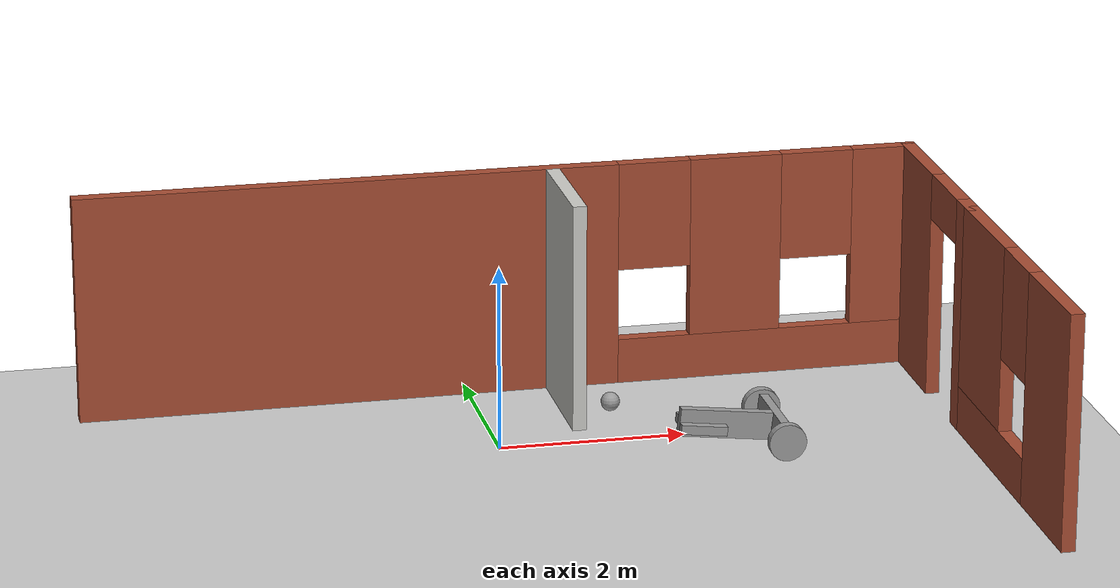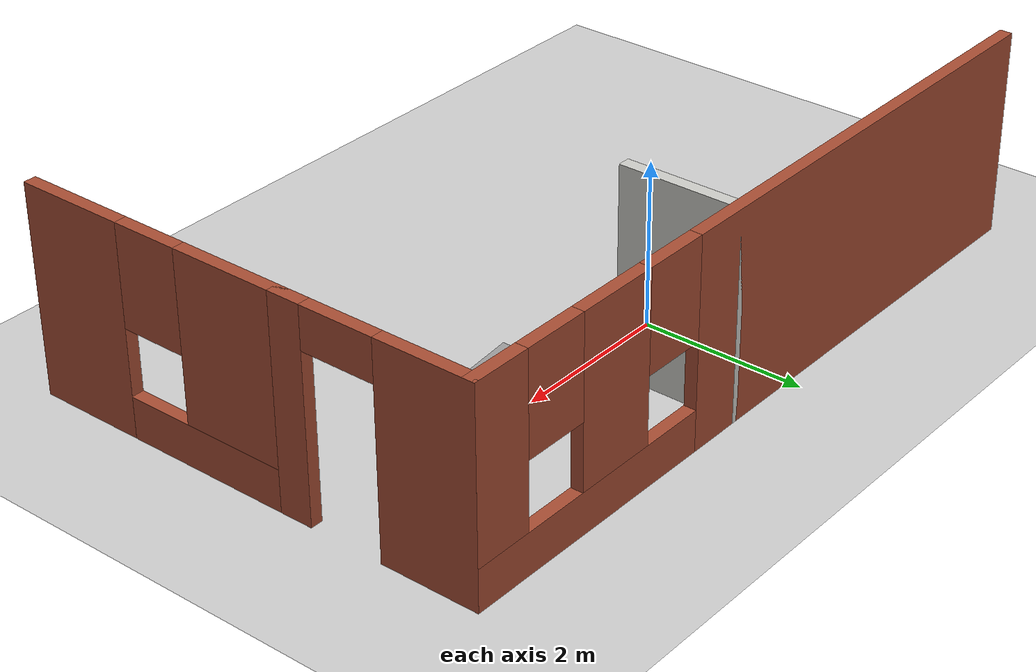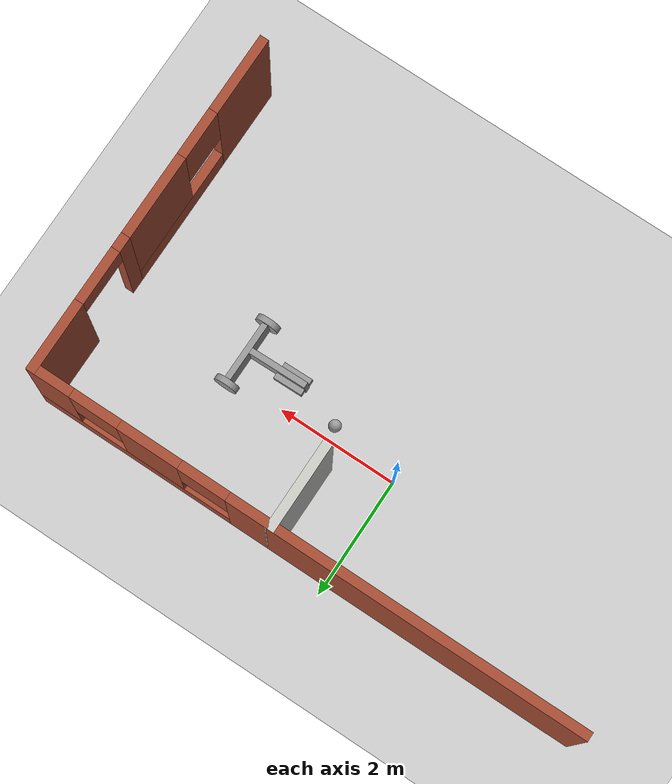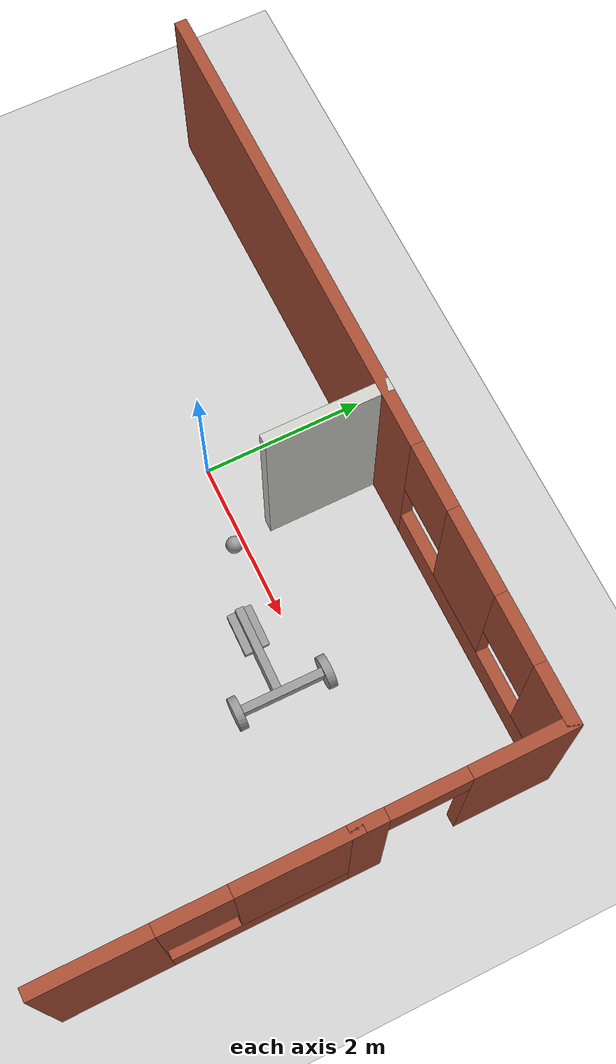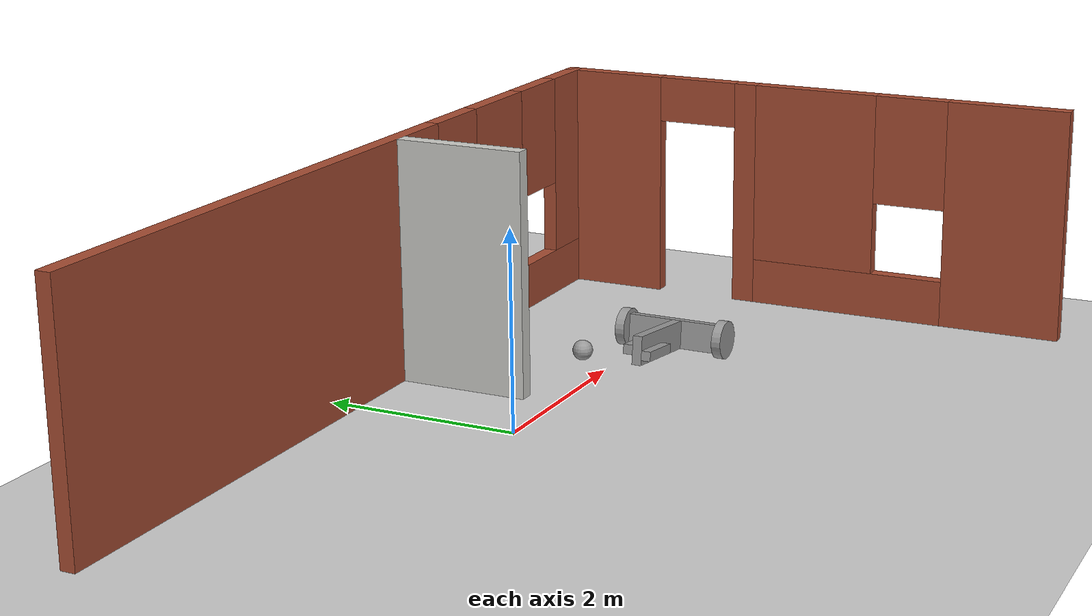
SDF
<sdf version="1.6">
 <world name="default">
  <model name="ground_plane">
   <static>1</static>
   <link name="link">
    <collision name="collision">
     <geometry><plane><normal>0 0 1</normal><size>100 100</size></plane></geometry>
     <surface>
      <contact><collide_bitmask>65535</collide_bitmask></contact>
      <friction><ode><mu>100</mu><mu2>50</mu2></ode></friction>
     </surface>
    </collision>
    <visual name="visual">
     <cast_shadows>0</cast_shadows>
     <geometry><plane><normal>0 0 1</normal><size>100 100</size></plane></geometry>
     <material>
      <script><uri>file://media/materials/scripts/gazebo.material</uri><name>Gazebo/Grey</name></script>
     </material>
    </visual>
   </link>
  </model>
  <model name="robot_with_arms">
   <link name="link_0">
    <inertial>
     <mass>1</mass>
     <inertia>
      <ixx>0.166667</ixx>
      <ixy>0</ixy>
      <ixz>0</ixz>
      <iyy>0.166667</iyy>
      <iyz>0</iyz>
      <izz>0.166667</izz>
     </inertia>
    </inertial>
    <visual name="visual">
     <geometry><box><size>0.3 1 0.1</size></box></geometry>
     <material>
      <lighting>1</lighting>
      <script><uri>file://media/materials/scripts/gazebo.material</uri><name>Gazebo/Grey</name></script>
      <shader type="pixel"><normal_map>__default__</normal_map></shader>
      <ambient>0.3 0.3 0.3 1</ambient>
      <diffuse>0.7 0.7 0.7 1</diffuse>
      <specular>0.01 0.01 0.01 1</specular>
      <emissive>0 0 0 1</emissive>
     </material>
    </visual>
    <visual name="ModelPreview_0::link_0::visual_1">
     <geometry><box><size>0.3 1 0.1</size></box></geometry>
     <material>
      <lighting>1</lighting>
      <script><uri>file://media/materials/scripts/gazebo.material</uri><name>Gazebo/Grey</name></script>
      <shader type="pixel"><normal_map>__default__</normal_map></shader>
      <ambient>0.3 0.3 0.3 1</ambient>
      <diffuse>0.7 0.7 0.7 1</diffuse>
      <specular>0.01 0.01 0.01 1</specular>
      <emissive>0 0 0 1</emissive>
     </material>
    </visual>
    <collision name="collision">
     <geometry><box><size>0.3 1 0.1</size></box></geometry>
     <surface>
      <friction>
       <ode><mu>1</mu><mu2>1</mu2><fdir1>0 0 0</fdir1><slip1>0</slip1><slip2>0</slip2></ode>
       <torsional>
        <coefficient>1</coefficient>
        <patch_radius>0</patch_radius>
        <surface_radius>0</surface_radius>
        <use_patch_radius>1</use_patch_radius>
        <ode><slip>0</slip></ode>
       </torsional>
      </friction>
      <bounce><restitution_coefficient>0</restitution_coefficient><threshold>1e+06</threshold></bounce>
      <contact>
       <collide_without_contact>0</collide_without_contact>
       <collide_without_contact_bitmask>1</collide_without_contact_bitmask>
       <collide_bitmask>1</collide_bitmask>
       <ode>
        <soft_cfm>0</soft_cfm>
        <soft_erp>0.2</soft_erp>
        <kp>1e+13</kp>
        <kd>1</kd>
        <max_vel>0.01</max_vel>
        <min_depth>0</min_depth>
       </ode>
       <bullet>
        <split_impulse>1</split_impulse>
        <split_impulse_penetration_threshold>-0.01</split_impulse_penetration_threshold>
        <soft_cfm>0</soft_cfm>
        <soft_erp>0.2</soft_erp>
        <kp>1e+13</kp>
        <kd>1</kd>
       </bullet>
      </contact>
     </surface>
    </collision>
   </link>
   <link name="link_0_0">
    <pose>-0 -0.045 0.55 0 -0 0</pose>
    <inertial>
     <mass>1</mass>
     <inertia>
      <ixx>0.166667</ixx>
      <ixy>0</ixy>
      <ixz>0</ixz>
      <iyy>0.166667</iyy>
      <iyz>0</iyz>
      <izz>0.166667</izz>
     </inertia>
    </inertial>
    <visual name="visual">
     <geometry><box><size>0.3 0.1 1</size></box></geometry>
     <material>
      <lighting>1</lighting>
      <script><uri>file://media/materials/scripts/gazebo.material</uri><name>Gazebo/Grey</name></script>
      <shader type="pixel"><normal_map>__default__</normal_map></shader>
      <ambient>0.3 0.3 0.3 1</ambient>
      <diffuse>0.7 0.7 0.7 1</diffuse>
      <specular>0.01 0.01 0.01 1</specular>
      <emissive>0 0 0 1</emissive>
     </material>
    </visual>
    <collision name="collision">
     <geometry><box><size>0.3 0.1 1</size></box></geometry>
     <surface>
      <friction>
       <ode><mu>1</mu><mu2>1</mu2><fdir1>0 0 0</fdir1><slip1>0</slip1><slip2>0</slip2></ode>
       <torsional>
        <coefficient>1</coefficient>
        <patch_radius>0</patch_radius>
        <surface_radius>0</surface_radius>
        <use_patch_radius>1</use_patch_radius>
        <ode><slip>0</slip></ode>
       </torsional>
      </friction>
      <bounce><restitution_coefficient>0</restitution_coefficient><threshold>1e+06</threshold></bounce>
      <contact>
       <collide_without_contact>0</collide_without_contact>
       <collide_without_contact_bitmask>1</collide_without_contact_bitmask>
       <collide_bitmask>1</collide_bitmask>
       <ode>
        <soft_cfm>0</soft_cfm>
        <soft_erp>0.2</soft_erp>
        <kp>1e+13</kp>
        <kd>1</kd>
        <max_vel>0.01</max_vel>
        <min_depth>0</min_depth>
       </ode>
       <bullet>
        <split_impulse>1</split_impulse>
        <split_impulse_penetration_threshold>-0.01</split_impulse_penetration_threshold>
        <soft_cfm>0</soft_cfm>
        <soft_erp>0.2</soft_erp>
        <kp>1e+13</kp>
        <kd>1</kd>
       </bullet>
      </contact>
     </surface>
    </collision>
   </link>
   <link name="link_1">
    <pose>0 -0.550019 -0 1.5707 -0 0</pose>
    <inertial>
     <mass>1</mass>
     <inertia><ixx>0.145833</ixx><ixy>0</ixy><ixz>0</ixz><iyy>0.145833</iyy><iyz>0</iyz><izz>0.125</izz></inertia>
    </inertial>
    <visual name="visual">
     <geometry><cylinder><radius>0.2</radius><length>0.1</length></cylinder></geometry>
     <material>
      <lighting>1</lighting>
      <script><uri>file://media/materials/scripts/gazebo.material</uri><name>Gazebo/Grey</name></script>
      <shader type="pixel"><normal_map>__default__</normal_map></shader>
      <ambient>0.3 0.3 0.3 1</ambient>
      <diffuse>0.7 0.7 0.7 1</diffuse>
      <specular>0.01 0.01 0.01 1</specular>
      <emissive>0 0 0 1</emissive>
     </material>
    </visual>
    <collision name="collision">
     <geometry><cylinder><radius>0.2</radius><length>0.1</length></cylinder></geometry>
     <surface>
      <friction>
       <ode><mu>1</mu><mu2>1</mu2><fdir1>0 0 0</fdir1><slip1>0</slip1><slip2>0</slip2></ode>
       <torsional>
        <coefficient>1</coefficient>
        <patch_radius>0</patch_radius>
        <surface_radius>0</surface_radius>
        <use_patch_radius>1</use_patch_radius>
        <ode><slip>0</slip></ode>
       </torsional>
      </friction>
      <bounce><restitution_coefficient>0</restitution_coefficient><threshold>1e+06</threshold></bounce>
      <contact>
       <collide_without_contact>0</collide_without_contact>
       <collide_without_contact_bitmask>1</collide_without_contact_bitmask>
       <collide_bitmask>1</collide_bitmask>
       <ode>
        <soft_cfm>0</soft_cfm>
        <soft_erp>0.2</soft_erp>
        <kp>1e+13</kp>
        <kd>1</kd>
        <max_vel>0.01</max_vel>
        <min_depth>0</min_depth>
       </ode>
       <bullet>
        <split_impulse>1</split_impulse>
        <split_impulse_penetration_threshold>-0.01</split_impulse_penetration_threshold>
        <soft_cfm>0</soft_cfm>
        <soft_erp>0.2</soft_erp>
        <kp>1e+13</kp>
        <kd>1</kd>
       </bullet>
      </contact>
     </surface>
    </collision>
   </link>
   <link name="link_1_0">
    <pose>-0.045 -0.145 0.8 0 -0 0</pose>
    <inertial>
     <mass>1</mass>
     <inertia>
      <ixx>0.166667</ixx>
      <ixy>0</ixy>
      <ixz>0</ixz>
      <iyy>0.166667</iyy>
      <iyz>0</iyz>
      <izz>0.166667</izz>
     </inertia>
    </inertial>
    <visual name="visual">
     <geometry><box><size>0.1 0.1 0.5</size></box></geometry>
     <material>
      <lighting>1</lighting>
      <script><uri>file://media/materials/scripts/gazebo.material</uri><name>Gazebo/Grey</name></script>
      <shader type="pixel"><normal_map>__default__</normal_map></shader>
      <ambient>0.3 0.3 0.3 1</ambient>
      <diffuse>0.7 0.7 0.7 1</diffuse>
      <specular>0.01 0.01 0.01 1</specular>
      <emissive>0 0 0 1</emissive>
     </material>
    </visual>
    <collision name="collision">
     <geometry><box><size>0.1 0.1 0.5</size></box></geometry>
     <surface>
      <friction>
       <ode><mu>1</mu><mu2>1</mu2><fdir1>0 0 0</fdir1><slip1>0</slip1><slip2>0</slip2></ode>
       <torsional>
        <coefficient>1</coefficient>
        <patch_radius>0</patch_radius>
        <surface_radius>0</surface_radius>
        <use_patch_radius>1</use_patch_radius>
        <ode><slip>0</slip></ode>
       </torsional>
      </friction>
      <bounce><restitution_coefficient>0</restitution_coefficient><threshold>1e+06</threshold></bounce>
      <contact>
       <collide_without_contact>0</collide_without_contact>
       <collide_without_contact_bitmask>1</collide_without_contact_bitmask>
       <collide_bitmask>1</collide_bitmask>
       <ode>
        <soft_cfm>0</soft_cfm>
        <soft_erp>0.2</soft_erp>
        <kp>1e+13</kp>
        <kd>1</kd>
        <max_vel>0.01</max_vel>
        <min_depth>0</min_depth>
       </ode>
       <bullet>
        <split_impulse>1</split_impulse>
        <split_impulse_penetration_threshold>-0.01</split_impulse_penetration_threshold>
        <soft_cfm>0</soft_cfm>
        <soft_erp>0.2</soft_erp>
        <kp>1e+13</kp>
        <kd>1</kd>
       </bullet>
      </contact>
     </surface>
    </collision>
   </link>
   <link name="link_1_0_clone">
    <pose>-0 0.055 0.8 0 -0 0</pose>
    <inertial>
     <mass>1</mass>
     <inertia>
      <ixx>0.166667</ixx>
      <ixy>0</ixy>
      <ixz>0</ixz>
      <iyy>0.166667</iyy>
      <iyz>0</iyz>
      <izz>0.166667</izz>
     </inertia>
    </inertial>
    <visual name="visual_0">
     <geometry><box><size>0.1 0.1 0.5</size></box></geometry>
     <material>
      <lighting>1</lighting>
      <script><uri>file://media/materials/scripts/gazebo.material</uri><name>Gazebo/Grey</name></script>
      <shader type="pixel"><normal_map>__default__</normal_map></shader>
      <ambient>0.3 0.3 0.3 1</ambient>
      <diffuse>0.7 0.7 0.7 1</diffuse>
      <specular>0.01 0.01 0.01 1</specular>
      <emissive>0 0 0 1</emissive>
     </material>
    </visual>
    <collision name="collision">
     <geometry><box><size>0.1 0.1 0.5</size></box></geometry>
     <surface>
      <friction>
       <ode><mu>1</mu><mu2>1</mu2><fdir1>0 0 0</fdir1><slip1>0</slip1><slip2>0</slip2></ode>
       <torsional>
        <coefficient>1</coefficient>
        <patch_radius>0</patch_radius>
        <surface_radius>0</surface_radius>
        <use_patch_radius>1</use_patch_radius>
        <ode><slip>0</slip></ode>
       </torsional>
      </friction>
      <bounce><restitution_coefficient>0</restitution_coefficient><threshold>1e+06</threshold></bounce>
      <contact>
       <collide_without_contact>0</collide_without_contact>
       <collide_without_contact_bitmask>1</collide_without_contact_bitmask>
       <collide_bitmask>1</collide_bitmask>
       <ode>
        <soft_cfm>0</soft_cfm>
        <soft_erp>0.2</soft_erp>
        <kp>1e+13</kp>
        <kd>1</kd>
        <max_vel>0.01</max_vel>
        <min_depth>0</min_depth>
       </ode>
       <bullet>
        <split_impulse>1</split_impulse>
        <split_impulse_penetration_threshold>-0.01</split_impulse_penetration_threshold>
        <soft_cfm>0</soft_cfm>
        <soft_erp>0.2</soft_erp>
        <kp>1e+13</kp>
        <kd>1</kd>
       </bullet>
      </contact>
     </surface>
    </collision>
   </link>
   <link name="link_1_clone">
    <pose>-0 0.550019 0 1.5707 -0 0</pose>
    <inertial>
     <mass>1</mass>
     <inertia><ixx>0.145833</ixx><ixy>0</ixy><ixz>0</ixz><iyy>0.145833</iyy><iyz>0</iyz><izz>0.125</izz></inertia>
    </inertial>
    <visual name="visual">
     <geometry><cylinder><radius>0.2</radius><length>0.1</length></cylinder></geometry>
     <material>
      <lighting>1</lighting>
      <script><uri>file://media/materials/scripts/gazebo.material</uri><name>Gazebo/Grey</name></script>
      <shader type="pixel"><normal_map>__default__</normal_map></shader>
      <ambient>0.3 0.3 0.3 1</ambient>
      <diffuse>0.7 0.7 0.7 1</diffuse>
      <specular>0.01 0.01 0.01 1</specular>
      <emissive>0 0 0 1</emissive>
     </material>
    </visual>
    <collision name="collision">
     <geometry><cylinder><radius>0.2</radius><length>0.1</length></cylinder></geometry>
     <surface>
      <friction>
       <ode><mu>1</mu><mu2>1</mu2><fdir1>0 0 0</fdir1><slip1>0</slip1><slip2>0</slip2></ode>
       <torsional>
        <coefficient>1</coefficient>
        <patch_radius>0</patch_radius>
        <surface_radius>0</surface_radius>
        <use_patch_radius>1</use_patch_radius>
        <ode><slip>0</slip></ode>
       </torsional>
      </friction>
      <bounce><restitution_coefficient>0</restitution_coefficient><threshold>1e+06</threshold></bounce>
      <contact>
       <collide_without_contact>0</collide_without_contact>
       <collide_without_contact_bitmask>1</collide_without_contact_bitmask>
       <collide_bitmask>1</collide_bitmask>
       <ode>
        <soft_cfm>0</soft_cfm>
        <soft_erp>0.2</soft_erp>
        <kp>1e+13</kp>
        <kd>1</kd>
        <max_vel>0.01</max_vel>
        <min_depth>0</min_depth>
       </ode>
       <bullet>
        <split_impulse>1</split_impulse>
        <split_impulse_penetration_threshold>-0.01</split_impulse_penetration_threshold>
        <soft_cfm>0</soft_cfm>
        <soft_erp>0.2</soft_erp>
        <kp>1e+13</kp>
        <kd>1</kd>
       </bullet>
      </contact>
     </surface>
    </collision>
   </link>
   <joint name="link_0_0_JOINT_1" type="revolute">
    <parent>link_0_0</parent>
    <child>link_1_0</child>
    <axis>
     <xyz>0 1 0</xyz>
     <use_parent_model_frame>0</use_parent_model_frame>
     <limit>
      <lower>-1.79769e+308</lower>
      <upper>1.79769e+308</upper>
      <effort>-1</effort>
      <velocity>-1</velocity>
     </limit>
     <dynamics>
      <spring_reference>0</spring_reference>
      <spring_stiffness>0</spring_stiffness>
      <damping>0</damping>
      <friction>0</friction>
     </dynamics>
    </axis>
    <physics>
     <ode><limit><cfm>0</cfm><erp>0.2</erp></limit><suspension><cfm>0</cfm><erp>0.2</erp></suspension></ode>
    </physics>
   </joint>
   <joint name="link_0_0_JOINT_2" type="revolute">
    <parent>link_0_0</parent>
    <child>link_1_0_clone</child>
    <axis>
     <xyz>0 1 0</xyz>
     <use_parent_model_frame>0</use_parent_model_frame>
     <limit>
      <lower>-1.79769e+308</lower>
      <upper>1.79769e+308</upper>
      <effort>-1</effort>
      <velocity>-1</velocity>
     </limit>
     <dynamics>
      <spring_reference>0</spring_reference>
      <spring_stiffness>0</spring_stiffness>
      <damping>0</damping>
      <friction>0</friction>
     </dynamics>
    </axis>
    <physics>
     <ode><limit><cfm>0</cfm><erp>0.2</erp></limit><suspension><cfm>0</cfm><erp>0.2</erp></suspension></ode>
    </physics>
   </joint>
   <joint name="link_0_JOINT_0_0" type="fixed">
    <parent>link_0</parent>
    <child>link_0_0</child>
    <physics>
     <ode><limit><cfm>0</cfm><erp>0.2</erp></limit><suspension><cfm>0</cfm><erp>0.2</erp></suspension></ode>
    </physics>
   </joint>
   <joint name="link_0_JOINT_0" type="revolute">
    <parent>link_0</parent>
    <child>link_1</child>
    <axis>
     <xyz>0 0 1</xyz>
     <use_parent_model_frame>0</use_parent_model_frame>
     <limit>
      <lower>-1.79769e+308</lower>
      <upper>1.79769e+308</upper>
      <effort>-1</effort>
      <velocity>-1</velocity>
     </limit>
     <dynamics>
      <spring_reference>0</spring_reference>
      <spring_stiffness>0</spring_stiffness>
      <damping>0</damping>
      <friction>0</friction>
     </dynamics>
    </axis>
    <physics>
     <ode><limit><cfm>0</cfm><erp>0.2</erp></limit><suspension><cfm>0</cfm><erp>0.2</erp></suspension></ode>
    </physics>
   </joint>
   <joint name="link_0_JOINT_1" type="revolute">
    <parent>link_0</parent>
    <child>link_1_clone</child>
    <axis>
     <xyz>0 0 1</xyz>
     <use_parent_model_frame>0</use_parent_model_frame>
     <limit>
      <lower>-1.79769e+308</lower>
      <upper>1.79769e+308</upper>
      <effort>-1</effort>
      <velocity>-1</velocity>
     </limit>
     <dynamics>
      <spring_reference>0</spring_reference>
      <spring_stiffness>0</spring_stiffness>
      <damping>0</damping>
      <friction>0</friction>
     </dynamics>
    </axis>
    <physics>
     <ode><limit><cfm>0</cfm><erp>0.2</erp></limit><suspension><cfm>0</cfm><erp>0.2</erp></suspension></ode>
    </physics>
   </joint>
   <static>0</static>
   <pose>2.8767 -0.401517 0.199998 3.5e-05 -1.45216 -0.004097</pose>
  </model>
  <model name="Building">
   <link name="Wall_10">
    <pose>0.55 2.175 0 0 -0 1.5708</pose>
    <visual name="Wall_10_Visual">
     <pose>0 0 1.25 0 -0 0</pose>
     <geometry><box><size>1.5 0.15 2.5</size></box></geometry>
     <material>
      <script><uri>file://media/materials/scripts/gazebo.material</uri><name>Gazebo/CeilingTiled</name></script>
      <ambient>0.435294 0.796078 0.67451 1</ambient>
      <shader type="pixel"/>
      <diffuse>1 1 1 1</diffuse>
      <specular>0 0 0 1</specular>
      <emissive>0 0 0 1</emissive>
     </material>
     <meta><layer>0</layer></meta>
    </visual>
    <collision name="Wall_10_Collision">
     <pose>0 0 1.25 0 -0 0</pose>
     <geometry><box><size>1.5 0.15 2.5</size></box></geometry>
     <surface>
      <friction>
       <ode><mu>1</mu><mu2>1</mu2><fdir1>0 0 0</fdir1><slip1>0</slip1><slip2>0</slip2></ode>
       <torsional>
        <coefficient>1</coefficient>
        <patch_radius>0</patch_radius>
        <surface_radius>0</surface_radius>
        <use_patch_radius>1</use_patch_radius>
        <ode><slip>0</slip></ode>
       </torsional>
      </friction>
      <bounce><restitution_coefficient>0</restitution_coefficient><threshold>1e+06</threshold></bounce>
      <contact>
       <collide_without_contact>0</collide_without_contact>
       <collide_without_contact_bitmask>1</collide_without_contact_bitmask>
       <collide_bitmask>1</collide_bitmask>
       <ode>
        <soft_cfm>0</soft_cfm>
        <soft_erp>0.2</soft_erp>
        <kp>1e+13</kp>
        <kd>1</kd>
        <max_vel>0.01</max_vel>
        <min_depth>0</min_depth>
       </ode>
       <bullet>
        <split_impulse>1</split_impulse>
        <split_impulse_penetration_threshold>-0.01</split_impulse_penetration_threshold>
        <soft_cfm>0</soft_cfm>
        <soft_erp>0.2</soft_erp>
        <kp>1e+13</kp>
        <kd>1</kd>
       </bullet>
      </contact>
     </surface>
    </collision>
   </link>
   <link name="Wall_2">
    <pose>4.55 -1.175 0 0 -0 1.5708</pose>
    <inertial>
     <mass>1</mass>
     <inertia><ixx>1</ixx><ixy>0</ixy><ixz>0</ixz><iyy>1</iyy><iyz>0</iyz><izz>1</izz></inertia>
    </inertial>
    <visual name="Wall_2_Visual_0">
     <pose>-1.09465 0 1.25 0 -0 0</pose>
     <geometry><box><size>1.31069 0.15 2.5</size></box></geometry>
     <material>
      <script><uri>file://media/materials/scripts/gazebo.material</uri><name>Gazebo/Bricks</name></script>
      <ambient>1 1 1 1</ambient>
      <shader type="pixel"><normal_map>__default__</normal_map></shader>
      <diffuse>1 1 1 1</diffuse>
      <specular>0.2 0.2 0.2 1</specular>
      <emissive>0 0 0 1</emissive>
     </material>
     <meta><layer>0</layer></meta>
    </visual>
    <visual name="Wall_2_Visual_1">
     <pose>0.655345 0 0.25 0 -0 0</pose>
     <geometry><box><size>2.18931 0.15 0.5</size></box></geometry>
     <material>
      <script><uri>file://media/materials/scripts/gazebo.material</uri><name>Gazebo/Bricks</name></script>
      <ambient>1 1 1 1</ambient>
      <shader type="pixel"><normal_map>__default__</normal_map></shader>
      <diffuse>1 1 1 1</diffuse>
      <specular>0.2 0.2 0.2 1</specular>
      <emissive>0 0 0 1</emissive>
     </material>
     <meta><layer>0</layer></meta>
    </visual>
    <visual name="Wall_2_Visual_2">
     <pose>1.05534 0 1.5 0 -0 0</pose>
     <geometry><box><size>1.38931 0.15 2</size></box></geometry>
     <material>
      <script><uri>file://media/materials/scripts/gazebo.material</uri><name>Gazebo/Bricks</name></script>
      <ambient>1 1 1 1</ambient>
      <shader type="pixel"><normal_map>__default__</normal_map></shader>
      <diffuse>1 1 1 1</diffuse>
      <specular>0.2 0.2 0.2 1</specular>
      <emissive>0 0 0 1</emissive>
     </material>
     <meta><layer>0</layer></meta>
    </visual>
    <visual name="Wall_2_Visual_3">
     <pose>-0.03931 0 1.9 0 -0 0</pose>
     <geometry><box><size>0.8 0.15 1.2</size></box></geometry>
     <material>
      <script><uri>file://media/materials/scripts/gazebo.material</uri><name>Gazebo/Bricks</name></script>
      <ambient>1 1 1 1</ambient>
      <shader type="pixel"><normal_map>__default__</normal_map></shader>
      <diffuse>1 1 1 1</diffuse>
      <specular>0.2 0.2 0.2 1</specular>
      <emissive>0 0 0 1</emissive>
     </material>
     <meta><layer>0</layer></meta>
    </visual>
    <collision name="Wall_2_Collision_0">
     <pose>-1.09465 0 1.25 0 -0 0</pose>
     <geometry><box><size>1.31069 0.15 2.5</size></box></geometry>
     <surface>
      <friction>
       <ode><mu>1</mu><mu2>1</mu2><fdir1>0 0 0</fdir1><slip1>0</slip1><slip2>0</slip2></ode>
       <torsional>
        <coefficient>1</coefficient>
        <patch_radius>0</patch_radius>
        <surface_radius>0</surface_radius>
        <use_patch_radius>1</use_patch_radius>
        <ode><slip>0</slip></ode>
       </torsional>
      </friction>
      <bounce><restitution_coefficient>0</restitution_coefficient><threshold>1e+06</threshold></bounce>
      <contact>
       <collide_without_contact>0</collide_without_contact>
       <collide_without_contact_bitmask>1</collide_without_contact_bitmask>
       <collide_bitmask>1</collide_bitmask>
       <ode>
        <soft_cfm>0</soft_cfm>
        <soft_erp>0.2</soft_erp>
        <kp>1e+13</kp>
        <kd>1</kd>
        <max_vel>0.01</max_vel>
        <min_depth>0</min_depth>
       </ode>
       <bullet>
        <split_impulse>1</split_impulse>
        <split_impulse_penetration_threshold>-0.01</split_impulse_penetration_threshold>
        <soft_cfm>0</soft_cfm>
        <soft_erp>0.2</soft_erp>
        <kp>1e+13</kp>
        <kd>1</kd>
       </bullet>
      </contact>
     </surface>
    </collision>
    <collision name="Wall_2_Collision_3">
     <pose>-0.03931 0 1.9 0 -0 0</pose>
     <geometry><box><size>0.8 0.15 1.2</size></box></geometry>
     <surface>
      <friction>
       <ode><mu>1</mu><mu2>1</mu2><fdir1>0 0 0</fdir1><slip1>0</slip1><slip2>0</slip2></ode>
       <torsional>
        <coefficient>1</coefficient>
        <patch_radius>0</patch_radius>
        <surface_radius>0</surface_radius>
        <use_patch_radius>1</use_patch_radius>
        <ode><slip>0</slip></ode>
       </torsional>
      </friction>
      <bounce><restitution_coefficient>0</restitution_coefficient><threshold>1e+06</threshold></bounce>
      <contact>
       <collide_without_contact>0</collide_without_contact>
       <collide_without_contact_bitmask>1</collide_without_contact_bitmask>
       <collide_bitmask>1</collide_bitmask>
       <ode>
        <soft_cfm>0</soft_cfm>
        <soft_erp>0.2</soft_erp>
        <kp>1e+13</kp>
        <kd>1</kd>
        <max_vel>0.01</max_vel>
        <min_depth>0</min_depth>
       </ode>
       <bullet>
        <split_impulse>1</split_impulse>
        <split_impulse_penetration_threshold>-0.01</split_impulse_penetration_threshold>
        <soft_cfm>0</soft_cfm>
        <soft_erp>0.2</soft_erp>
        <kp>1e+13</kp>
        <kd>1</kd>
       </bullet>
      </contact>
     </surface>
    </collision>
    <collision name="Wall_2_Collision_1">
     <pose>0.655345 0 0.25 0 -0 0</pose>
     <geometry><box><size>2.18931 0.15 0.5</size></box></geometry>
     <surface>
      <friction>
       <ode><mu>1</mu><mu2>1</mu2><fdir1>0 0 0</fdir1><slip1>0</slip1><slip2>0</slip2></ode>
       <torsional>
        <coefficient>1</coefficient>
        <patch_radius>0</patch_radius>
        <surface_radius>0</surface_radius>
        <use_patch_radius>1</use_patch_radius>
        <ode><slip>0</slip></ode>
       </torsional>
      </friction>
      <bounce><restitution_coefficient>0</restitution_coefficient><threshold>1e+06</threshold></bounce>
      <contact>
       <collide_without_contact>0</collide_without_contact>
       <collide_without_contact_bitmask>1</collide_without_contact_bitmask>
       <collide_bitmask>1</collide_bitmask>
       <ode>
        <soft_cfm>0</soft_cfm>
        <soft_erp>0.2</soft_erp>
        <kp>1e+13</kp>
        <kd>1</kd>
        <max_vel>0.01</max_vel>
        <min_depth>0</min_depth>
       </ode>
       <bullet>
        <split_impulse>1</split_impulse>
        <split_impulse_penetration_threshold>-0.01</split_impulse_penetration_threshold>
        <soft_cfm>0</soft_cfm>
        <soft_erp>0.2</soft_erp>
        <kp>1e+13</kp>
        <kd>1</kd>
       </bullet>
      </contact>
     </surface>
    </collision>
    <collision name="Wall_2_Collision_2">
     <pose>1.05534 0 1.5 0 -0 0</pose>
     <geometry><box><size>1.38931 0.15 2</size></box></geometry>
     <surface>
      <friction>
       <ode><mu>1</mu><mu2>1</mu2><fdir1>0 0 0</fdir1><slip1>0</slip1><slip2>0</slip2></ode>
       <torsional>
        <coefficient>1</coefficient>
        <patch_radius>0</patch_radius>
        <surface_radius>0</surface_radius>
        <use_patch_radius>1</use_patch_radius>
        <ode><slip>0</slip></ode>
       </torsional>
      </friction>
      <bounce><restitution_coefficient>0</restitution_coefficient><threshold>1e+06</threshold></bounce>
      <contact>
       <collide_without_contact>0</collide_without_contact>
       <collide_without_contact_bitmask>1</collide_without_contact_bitmask>
       <collide_bitmask>1</collide_bitmask>
       <ode>
        <soft_cfm>0</soft_cfm>
        <soft_erp>0.2</soft_erp>
        <kp>1e+13</kp>
        <kd>1</kd>
        <max_vel>0.01</max_vel>
        <min_depth>0</min_depth>
       </ode>
       <bullet>
        <split_impulse>1</split_impulse>
        <split_impulse_penetration_threshold>-0.01</split_impulse_penetration_threshold>
        <soft_cfm>0</soft_cfm>
        <soft_erp>0.2</soft_erp>
        <kp>1e+13</kp>
        <kd>1</kd>
       </bullet>
      </contact>
     </surface>
    </collision>
   </link>
   <link name="Wall_5">
    <pose>0 2.85 0 0 -0 0</pose>
    <visual name="Wall_5_Visual_0">
     <pose>-1.6726 0 1.25 0 -0 0</pose>
     <geometry><box><size>5.90481 0.15 2.5</size></box></geometry>
     <material>
      <script><uri>file://media/materials/scripts/gazebo.material</uri><name>Gazebo/Bricks</name></script>
      <ambient>1 1 1 1</ambient>
      <shader type="pixel"/>
      <diffuse>1 1 1 1</diffuse>
      <specular>0.2 0.2 0.2 1</specular>
      <emissive>0 0 0 1</emissive>
     </material>
     <meta><layer>0</layer></meta>
    </visual>
    <visual name="Wall_5_Visual_1">
     <pose>2.9524 0 0.25 0 -0 0</pose>
     <geometry><box><size>3.34519 0.15 0.5</size></box></geometry>
     <material>
      <script><uri>file://media/materials/scripts/gazebo.material</uri><name>Gazebo/Bricks</name></script>
      <ambient>1 1 1 1</ambient>
      <shader type="pixel"/>
      <diffuse>1 1 1 1</diffuse>
      <specular>0.2 0.2 0.2 1</specular>
      <emissive>0 0 0 1</emissive>
     </material>
     <meta><layer>0</layer></meta>
    </visual>
    <visual name="Wall_5_Visual_2">
     <pose>2.58765 0 1.5 0 -0 0</pose>
     <geometry><box><size>1.01569 0.15 2</size></box></geometry>
     <material>
      <script><uri>file://media/materials/scripts/gazebo.material</uri><name>Gazebo/Bricks</name></script>
      <ambient>1 1 1 1</ambient>
      <shader type="pixel"/>
      <diffuse>1 1 1 1</diffuse>
      <specular>0.2 0.2 0.2 1</specular>
      <emissive>0 0 0 1</emissive>
     </material>
     <meta><layer>0</layer></meta>
    </visual>
    <visual name="Wall_5_Visual_3">
     <pose>4.26025 0 1.5 0 -0 0</pose>
     <geometry><box><size>0.729503 0.15 2</size></box></geometry>
     <material>
      <script><uri>file://media/materials/scripts/gazebo.material</uri><name>Gazebo/Bricks</name></script>
      <ambient>1 1 1 1</ambient>
      <shader type="pixel"/>
      <diffuse>1 1 1 1</diffuse>
      <specular>0.2 0.2 0.2 1</specular>
      <emissive>0 0 0 1</emissive>
     </material>
     <meta><layer>0</layer></meta>
    </visual>
    <visual name="Wall_5_Visual_4">
     <pose>1.67981 0 1.9 0 -0 0</pose>
     <geometry><box><size>0.8 0.15 1.2</size></box></geometry>
     <material>
      <script><uri>file://media/materials/scripts/gazebo.material</uri><name>Gazebo/Bricks</name></script>
      <ambient>1 1 1 1</ambient>
      <shader type="pixel"/>
      <diffuse>1 1 1 1</diffuse>
      <specular>0.2 0.2 0.2 1</specular>
      <emissive>0 0 0 1</emissive>
     </material>
     <meta><layer>0</layer></meta>
    </visual>
    <visual name="Wall_5_Visual_5">
     <pose>3.4955 0 1.9 0 -0 0</pose>
     <geometry><box><size>0.8 0.15 1.2</size></box></geometry>
     <material>
      <script><uri>file://media/materials/scripts/gazebo.material</uri><name>Gazebo/Bricks</name></script>
      <ambient>1 1 1 1</ambient>
      <shader type="pixel"/>
      <diffuse>1 1 1 1</diffuse>
      <specular>0.2 0.2 0.2 1</specular>
      <emissive>0 0 0 1</emissive>
     </material>
     <meta><layer>0</layer></meta>
    </visual>
    <collision name="Wall_5_Collision_0">
     <pose>-1.6726 0 1.25 0 -0 0</pose>
     <geometry><box><size>5.90481 0.15 2.5</size></box></geometry>
     <surface>
      <friction>
       <ode><mu>1</mu><mu2>1</mu2><fdir1>0 0 0</fdir1><slip1>0</slip1><slip2>0</slip2></ode>
       <torsional>
        <coefficient>1</coefficient>
        <patch_radius>0</patch_radius>
        <surface_radius>0</surface_radius>
        <use_patch_radius>1</use_patch_radius>
        <ode><slip>0</slip></ode>
       </torsional>
      </friction>
      <bounce><restitution_coefficient>0</restitution_coefficient><threshold>1e+06</threshold></bounce>
      <contact>
       <collide_without_contact>0</collide_without_contact>
       <collide_without_contact_bitmask>1</collide_without_contact_bitmask>
       <collide_bitmask>1</collide_bitmask>
       <ode>
        <soft_cfm>0</soft_cfm>
        <soft_erp>0.2</soft_erp>
        <kp>1e+13</kp>
        <kd>1</kd>
        <max_vel>0.01</max_vel>
        <min_depth>0</min_depth>
       </ode>
       <bullet>
        <split_impulse>1</split_impulse>
        <split_impulse_penetration_threshold>-0.01</split_impulse_penetration_threshold>
        <soft_cfm>0</soft_cfm>
        <soft_erp>0.2</soft_erp>
        <kp>1e+13</kp>
        <kd>1</kd>
       </bullet>
      </contact>
     </surface>
    </collision>
    <collision name="Wall_5_Collision_3">
     <pose>4.26025 0 1.5 0 -0 0</pose>
     <geometry><box><size>0.729503 0.15 2</size></box></geometry>
     <surface>
      <friction>
       <ode><mu>1</mu><mu2>1</mu2><fdir1>0 0 0</fdir1><slip1>0</slip1><slip2>0</slip2></ode>
       <torsional>
        <coefficient>1</coefficient>
        <patch_radius>0</patch_radius>
        <surface_radius>0</surface_radius>
        <use_patch_radius>1</use_patch_radius>
        <ode><slip>0</slip></ode>
       </torsional>
      </friction>
      <bounce><restitution_coefficient>0</restitution_coefficient><threshold>1e+06</threshold></bounce>
      <contact>
       <collide_without_contact>0</collide_without_contact>
       <collide_without_contact_bitmask>1</collide_without_contact_bitmask>
       <collide_bitmask>1</collide_bitmask>
       <ode>
        <soft_cfm>0</soft_cfm>
        <soft_erp>0.2</soft_erp>
        <kp>1e+13</kp>
        <kd>1</kd>
        <max_vel>0.01</max_vel>
        <min_depth>0</min_depth>
       </ode>
       <bullet>
        <split_impulse>1</split_impulse>
        <split_impulse_penetration_threshold>-0.01</split_impulse_penetration_threshold>
        <soft_cfm>0</soft_cfm>
        <soft_erp>0.2</soft_erp>
        <kp>1e+13</kp>
        <kd>1</kd>
       </bullet>
      </contact>
     </surface>
    </collision>
    <collision name="Wall_5_Collision_1">
     <pose>2.9524 0 0.25 0 -0 0</pose>
     <geometry><box><size>3.34519 0.15 0.5</size></box></geometry>
     <surface>
      <friction>
       <ode><mu>1</mu><mu2>1</mu2><fdir1>0 0 0</fdir1><slip1>0</slip1><slip2>0</slip2></ode>
       <torsional>
        <coefficient>1</coefficient>
        <patch_radius>0</patch_radius>
        <surface_radius>0</surface_radius>
        <use_patch_radius>1</use_patch_radius>
        <ode><slip>0</slip></ode>
       </torsional>
      </friction>
      <bounce><restitution_coefficient>0</restitution_coefficient><threshold>1e+06</threshold></bounce>
      <contact>
       <collide_without_contact>0</collide_without_contact>
       <collide_without_contact_bitmask>1</collide_without_contact_bitmask>
       <collide_bitmask>1</collide_bitmask>
       <ode>
        <soft_cfm>0</soft_cfm>
        <soft_erp>0.2</soft_erp>
        <kp>1e+13</kp>
        <kd>1</kd>
        <max_vel>0.01</max_vel>
        <min_depth>0</min_depth>
       </ode>
       <bullet>
        <split_impulse>1</split_impulse>
        <split_impulse_penetration_threshold>-0.01</split_impulse_penetration_threshold>
        <soft_cfm>0</soft_cfm>
        <soft_erp>0.2</soft_erp>
        <kp>1e+13</kp>
        <kd>1</kd>
       </bullet>
      </contact>
     </surface>
    </collision>
    <collision name="Wall_5_Collision_2">
     <pose>2.58765 0 1.5 0 -0 0</pose>
     <geometry><box><size>1.01569 0.15 2</size></box></geometry>
     <surface>
      <friction>
       <ode><mu>1</mu><mu2>1</mu2><fdir1>0 0 0</fdir1><slip1>0</slip1><slip2>0</slip2></ode>
       <torsional>
        <coefficient>1</coefficient>
        <patch_radius>0</patch_radius>
        <surface_radius>0</surface_radius>
        <use_patch_radius>1</use_patch_radius>
        <ode><slip>0</slip></ode>
       </torsional>
      </friction>
      <bounce><restitution_coefficient>0</restitution_coefficient><threshold>1e+06</threshold></bounce>
      <contact>
       <collide_without_contact>0</collide_without_contact>
       <collide_without_contact_bitmask>1</collide_without_contact_bitmask>
       <collide_bitmask>1</collide_bitmask>
       <ode>
        <soft_cfm>0</soft_cfm>
        <soft_erp>0.2</soft_erp>
        <kp>1e+13</kp>
        <kd>1</kd>
        <max_vel>0.01</max_vel>
        <min_depth>0</min_depth>
       </ode>
       <bullet>
        <split_impulse>1</split_impulse>
        <split_impulse_penetration_threshold>-0.01</split_impulse_penetration_threshold>
        <soft_cfm>0</soft_cfm>
        <soft_erp>0.2</soft_erp>
        <kp>1e+13</kp>
        <kd>1</kd>
       </bullet>
      </contact>
     </surface>
    </collision>
    <collision name="Wall_5_Collision_5">
     <pose>3.4955 0 1.9 0 -0 0</pose>
     <geometry><box><size>0.8 0.15 1.2</size></box></geometry>
     <surface>
      <friction>
       <ode><mu>1</mu><mu2>1</mu2><fdir1>0 0 0</fdir1><slip1>0</slip1><slip2>0</slip2></ode>
       <torsional>
        <coefficient>1</coefficient>
        <patch_radius>0</patch_radius>
        <surface_radius>0</surface_radius>
        <use_patch_radius>1</use_patch_radius>
        <ode><slip>0</slip></ode>
       </torsional>
      </friction>
      <bounce><restitution_coefficient>0</restitution_coefficient><threshold>1e+06</threshold></bounce>
      <contact>
       <collide_without_contact>0</collide_without_contact>
       <collide_without_contact_bitmask>1</collide_without_contact_bitmask>
       <collide_bitmask>1</collide_bitmask>
       <ode>
        <soft_cfm>0</soft_cfm>
        <soft_erp>0.2</soft_erp>
        <kp>1e+13</kp>
        <kd>1</kd>
        <max_vel>0.01</max_vel>
        <min_depth>0</min_depth>
       </ode>
       <bullet>
        <split_impulse>1</split_impulse>
        <split_impulse_penetration_threshold>-0.01</split_impulse_penetration_threshold>
        <soft_cfm>0</soft_cfm>
        <soft_erp>0.2</soft_erp>
        <kp>1e+13</kp>
        <kd>1</kd>
       </bullet>
      </contact>
     </surface>
    </collision>
    <collision name="Wall_5_Collision_4">
     <pose>1.67981 0 1.9 0 -0 0</pose>
     <geometry><box><size>0.8 0.15 1.2</size></box></geometry>
     <surface>
      <friction>
       <ode><mu>1</mu><mu2>1</mu2><fdir1>0 0 0</fdir1><slip1>0</slip1><slip2>0</slip2></ode>
       <torsional>
        <coefficient>1</coefficient>
        <patch_radius>0</patch_radius>
        <surface_radius>0</surface_radius>
        <use_patch_radius>1</use_patch_radius>
        <ode><slip>0</slip></ode>
       </torsional>
      </friction>
      <bounce><restitution_coefficient>0</restitution_coefficient><threshold>1e+06</threshold></bounce>
      <contact>
       <collide_without_contact>0</collide_without_contact>
       <collide_without_contact_bitmask>1</collide_without_contact_bitmask>
       <collide_bitmask>1</collide_bitmask>
       <ode>
        <soft_cfm>0</soft_cfm>
        <soft_erp>0.2</soft_erp>
        <kp>1e+13</kp>
        <kd>1</kd>
        <max_vel>0.01</max_vel>
        <min_depth>0</min_depth>
       </ode>
       <bullet>
        <split_impulse>1</split_impulse>
        <split_impulse_penetration_threshold>-0.01</split_impulse_penetration_threshold>
        <soft_cfm>0</soft_cfm>
        <soft_erp>0.2</soft_erp>
        <kp>1e+13</kp>
        <kd>1</kd>
       </bullet>
      </contact>
     </surface>
    </collision>
   </link>
   <link name="Wall_6">
    <pose>4.55 1.675 0 0 0 -1.5708</pose>
    <visual name="Wall_6_Visual_0">
     <pose>-0.650369 0 1.25 0 -0 0</pose>
     <geometry><box><size>1.19926 0.15 2.5</size></box></geometry>
     <material>
      <script><uri>file://media/materials/scripts/gazebo.material</uri><name>Gazebo/Bricks</name></script>
      <ambient>1 1 1 1</ambient>
      <shader type="pixel"/>
      <diffuse>1 1 1 1</diffuse>
      <specular>0.2 0.2 0.2 1</specular>
      <emissive>0 0 0 1</emissive>
     </material>
     <meta><layer>0</layer></meta>
    </visual>
    <visual name="Wall_6_Visual_1">
     <pose>1.04963 0 1.25 0 -0 0</pose>
     <geometry><box><size>0.400738 0.15 2.5</size></box></geometry>
     <material>
      <script><uri>file://media/materials/scripts/gazebo.material</uri><name>Gazebo/Bricks</name></script>
      <ambient>1 1 1 1</ambient>
      <shader type="pixel"/>
      <diffuse>1 1 1 1</diffuse>
      <specular>0.2 0.2 0.2 1</specular>
      <emissive>0 0 0 1</emissive>
     </material>
     <meta><layer>0</layer></meta>
    </visual>
    <visual name="Wall_6_Visual_2">
     <pose>0.399262 0 2.25 0 -0 0</pose>
     <geometry><box><size>0.9 0.15 0.5</size></box></geometry>
     <material>
      <script><uri>file://media/materials/scripts/gazebo.material</uri><name>Gazebo/Bricks</name></script>
      <ambient>1 1 1 1</ambient>
      <shader type="pixel"/>
      <diffuse>1 1 1 1</diffuse>
      <specular>0.2 0.2 0.2 1</specular>
      <emissive>0 0 0 1</emissive>
     </material>
     <meta><layer>0</layer></meta>
    </visual>
    <collision name="Wall_6_Collision_0">
     <pose>-0.650369 0 1.25 0 -0 0</pose>
     <geometry><box><size>1.19926 0.15 2.5</size></box></geometry>
     <surface>
      <friction>
       <ode><mu>1</mu><mu2>1</mu2><fdir1>0 0 0</fdir1><slip1>0</slip1><slip2>0</slip2></ode>
       <torsional>
        <coefficient>1</coefficient>
        <patch_radius>0</patch_radius>
        <surface_radius>0</surface_radius>
        <use_patch_radius>1</use_patch_radius>
        <ode><slip>0</slip></ode>
       </torsional>
      </friction>
      <bounce><restitution_coefficient>0</restitution_coefficient><threshold>1e+06</threshold></bounce>
      <contact>
       <collide_without_contact>0</collide_without_contact>
       <collide_without_contact_bitmask>1</collide_without_contact_bitmask>
       <collide_bitmask>1</collide_bitmask>
       <ode>
        <soft_cfm>0</soft_cfm>
        <soft_erp>0.2</soft_erp>
        <kp>1e+13</kp>
        <kd>1</kd>
        <max_vel>0.01</max_vel>
        <min_depth>0</min_depth>
       </ode>
       <bullet>
        <split_impulse>1</split_impulse>
        <split_impulse_penetration_threshold>-0.01</split_impulse_penetration_threshold>
        <soft_cfm>0</soft_cfm>
        <soft_erp>0.2</soft_erp>
        <kp>1e+13</kp>
        <kd>1</kd>
       </bullet>
      </contact>
     </surface>
    </collision>
    <collision name="Wall_6_Collision_1">
     <pose>1.04963 0 1.25 0 -0 0</pose>
     <geometry><box><size>0.400738 0.15 2.5</size></box></geometry>
     <surface>
      <friction>
       <ode><mu>1</mu><mu2>1</mu2><fdir1>0 0 0</fdir1><slip1>0</slip1><slip2>0</slip2></ode>
       <torsional>
        <coefficient>1</coefficient>
        <patch_radius>0</patch_radius>
        <surface_radius>0</surface_radius>
        <use_patch_radius>1</use_patch_radius>
        <ode><slip>0</slip></ode>
       </torsional>
      </friction>
      <bounce><restitution_coefficient>0</restitution_coefficient><threshold>1e+06</threshold></bounce>
      <contact>
       <collide_without_contact>0</collide_without_contact>
       <collide_without_contact_bitmask>1</collide_without_contact_bitmask>
       <collide_bitmask>1</collide_bitmask>
       <ode>
        <soft_cfm>0</soft_cfm>
        <soft_erp>0.2</soft_erp>
        <kp>1e+13</kp>
        <kd>1</kd>
        <max_vel>0.01</max_vel>
        <min_depth>0</min_depth>
       </ode>
       <bullet>
        <split_impulse>1</split_impulse>
        <split_impulse_penetration_threshold>-0.01</split_impulse_penetration_threshold>
        <soft_cfm>0</soft_cfm>
        <soft_erp>0.2</soft_erp>
        <kp>1e+13</kp>
        <kd>1</kd>
       </bullet>
      </contact>
     </surface>
    </collision>
    <collision name="Wall_6_Collision_2">
     <pose>0.399262 0 2.25 0 -0 0</pose>
     <geometry><box><size>0.9 0.15 0.5</size></box></geometry>
     <surface>
      <friction>
       <ode><mu>1</mu><mu2>1</mu2><fdir1>0 0 0</fdir1><slip1>0</slip1><slip2>0</slip2></ode>
       <torsional>
        <coefficient>1</coefficient>
        <patch_radius>0</patch_radius>
        <surface_radius>0</surface_radius>
        <use_patch_radius>1</use_patch_radius>
        <ode><slip>0</slip></ode>
       </torsional>
      </friction>
      <bounce><restitution_coefficient>0</restitution_coefficient><threshold>1e+06</threshold></bounce>
      <contact>
       <collide_without_contact>0</collide_without_contact>
       <collide_without_contact_bitmask>1</collide_without_contact_bitmask>
       <collide_bitmask>1</collide_bitmask>
       <ode>
        <soft_cfm>0</soft_cfm>
        <soft_erp>0.2</soft_erp>
        <kp>1e+13</kp>
        <kd>1</kd>
        <max_vel>0.01</max_vel>
        <min_depth>0</min_depth>
       </ode>
       <bullet>
        <split_impulse>1</split_impulse>
        <split_impulse_penetration_threshold>-0.01</split_impulse_penetration_threshold>
        <soft_cfm>0</soft_cfm>
        <soft_erp>0.2</soft_erp>
        <kp>1e+13</kp>
        <kd>1</kd>
       </bullet>
      </contact>
     </surface>
    </collision>
   </link>
   <static>1</static>
   <pose>0.39 -1.08 0 0 -0 0</pose>
  </model>
  <model name="my_ball2">
   <link name="link">
    <inertial>
     <mass>1</mass>
     <inertia><ixx>0.1</ixx><ixy>0</ixy><ixz>0</ixz><iyy>0.1</iyy><iyz>0</iyz><izz>0.1</izz></inertia>
    </inertial>
    <visual name="visual">
     <geometry><sphere><radius>0.1</radius></sphere></geometry>
     <material>
      <script><name>Gazebo/Grey</name><uri>file://media/materials/scripts/gazebo.material</uri></script>
      <shader type="pixel"><normal_map>__default__</normal_map></shader>
      <ambient>1 1 1 1</ambient>
      <diffuse>1 1 1 1</diffuse>
      <specular>1 1 1 1</specular>
      <emissive>1 1 1 1</emissive>
     </material>
    </visual>
    <collision name="collision">
     <geometry><sphere><radius>0.1</radius></sphere></geometry>
     <surface>
      <friction>
       <ode><mu>1</mu><mu2>1</mu2><fdir1>0 0 0</fdir1><slip1>0</slip1><slip2>0</slip2></ode>
       <torsional>
        <coefficient>1</coefficient>
        <patch_radius>0</patch_radius>
        <surface_radius>0</surface_radius>
        <use_patch_radius>1</use_patch_radius>
        <ode><slip>0</slip></ode>
       </torsional>
      </friction>
      <bounce><restitution_coefficient>0</restitution_coefficient><threshold>1e+06</threshold></bounce>
      <contact>
       <collide_without_contact>0</collide_without_contact>
       <collide_without_contact_bitmask>1</collide_without_contact_bitmask>
       <collide_bitmask>1</collide_bitmask>
       <ode>
        <soft_cfm>0</soft_cfm>
        <soft_erp>0.2</soft_erp>
        <kp>1e+13</kp>
        <kd>1</kd>
        <max_vel>0.01</max_vel>
        <min_depth>0</min_depth>
       </ode>
       <bullet>
        <split_impulse>1</split_impulse>
        <split_impulse_penetration_threshold>-0.01</split_impulse_penetration_threshold>
        <soft_cfm>0</soft_cfm>
        <soft_erp>0.2</soft_erp>
        <kp>1e+13</kp>
        <kd>1</kd>
       </bullet>
      </contact>
     </surface>
    </collision>
   </link>
   <static>0</static>
   <pose>1.15548 -0.168374 0.5 0 -0 0</pose>
  </model>
 </world>
</sdf>
